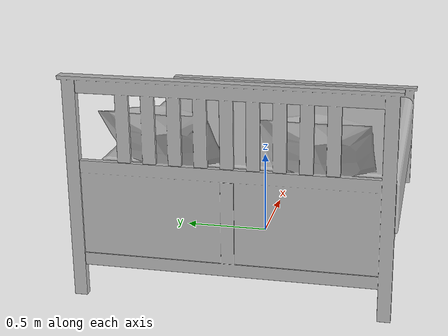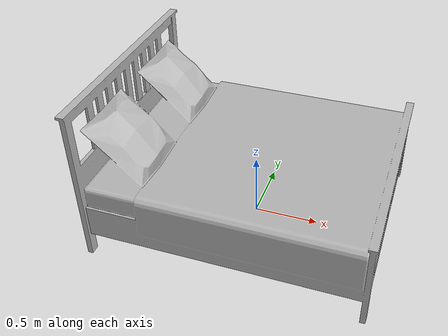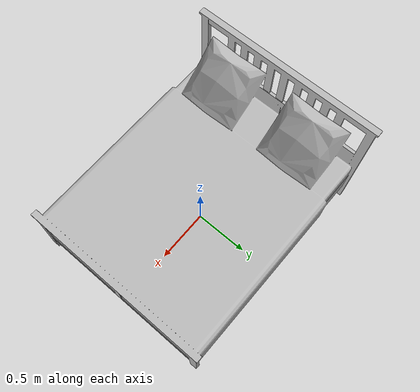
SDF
<?xml version='1.0'?>
<sdf version='1.4'>
  <model name='s__416'>
    <pose>0 0 0 0 0 0</pose>
    <static>true</static>
    <link name='link'>
      <collision name='collision'>
        <pose>0 0 0 0 0 0</pose>
        <geometry>
          <box>
            <size>2.11 1.74 2</size>
          </box>
        </geometry>
      </collision>
      <visual name='visual'>
        <pose>0 0 0 0 0 0</pose>
        <geometry>
          <mesh><uri>model://s__416/s__416.dae</uri></mesh>
        </geometry>
      </visual>
    </link>
  </model>
</sdf>
